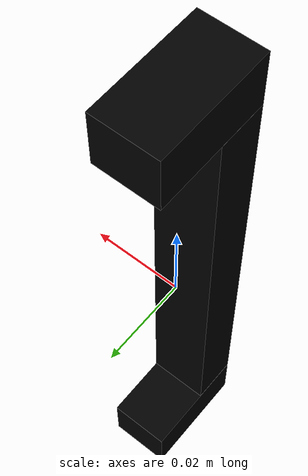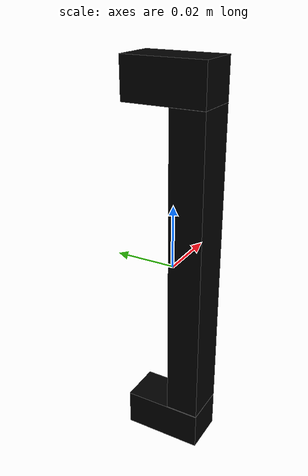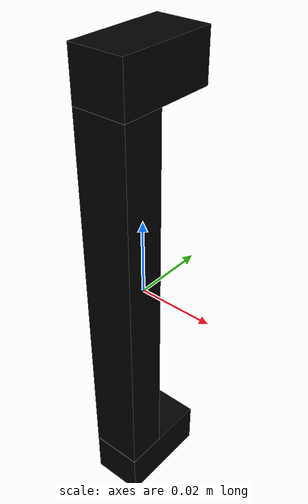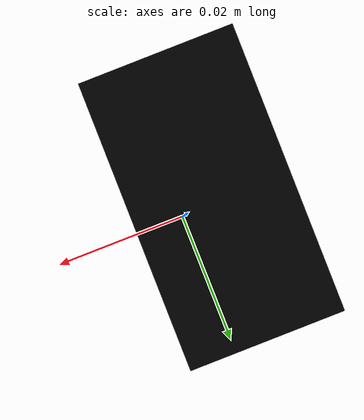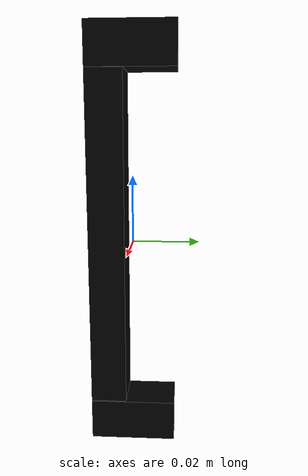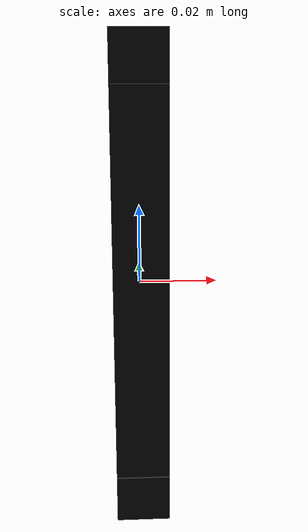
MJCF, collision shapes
<?xml version="1.0" ?>
<mujoco model="model">
    <compiler angle="radian"/>
    <asset>
        <mesh file="visuals/CabinetHandle039.obj" name="mesh"/>
        <texture file="visuals/T_BC001.png" name="tex" type="2d"/>
        <material name="mat" rgba="1 1 1 1.0" texture="tex" shininess="0.4472135901451111" specular="0.3103448502657381"/>
    </asset>
    <default>
        <default class="visual">
            <geom conaffinity="0" contype="0" group="1" type="mesh"/>
        </default>
        <default class="collision">
            <geom group="0" rgba="0 0 0 0"/>
        </default>
        <default class="spawn">
            <geom group="0" rgba="0 0 0 0" contype="0" conaffinity="0"/>
            <site group="0" rgba="0 0 0 0"/>
        </default>
    </default>
    <worldbody>
        <body>
            <body name="object">
                <geom mesh="mesh" type="mesh" solimp="0.998 0.998 0.001" solref="0.001 1" density="100" friction="0.95 0.3 0.1" class="visual" material="mat"/>
                <geom class="collision" type="box" pos="0.00010934985766652972 -0.007466495502740145 7.435523002641276e-05" size="0.00696534663438797 0.0054173823446035385 0.050145819783210754" quat="1.0 0.0 0.0 0.0"/>
                <geom class="collision" type="box" pos="0.00010934985766652972 8.427305874647573e-05 0.056465376168489456" size="0.00696534663438797 0.012968151830136776 0.006208379752933979" quat="1.0 0.0 0.0 0.0" name="handle_connector"/>
                <geom class="collision" type="box" pos="0.00010934985766652972 8.427305874647573e-05 -0.05652201548218727" size="0.00696534663438797 0.012968151830136776 0.006208379752933979" quat="1.0 0.0 0.0 0.0"/>
            </body>
        </body>
    </worldbody>
    <actuator/>
</mujoco>
